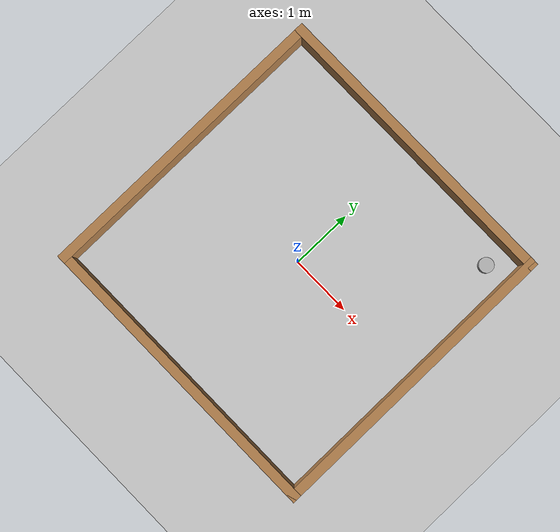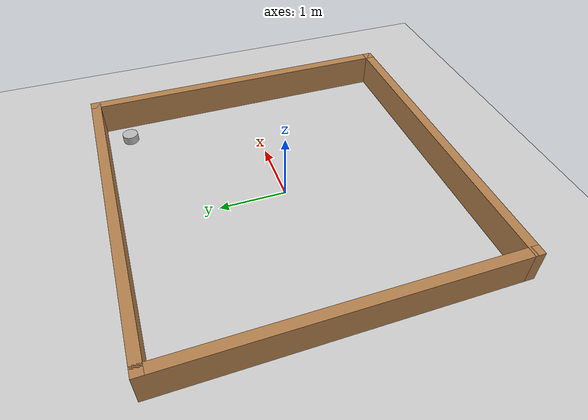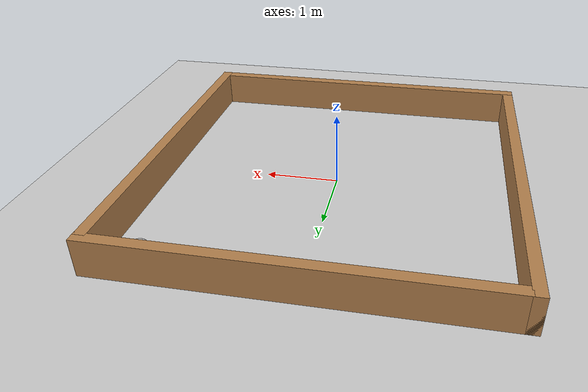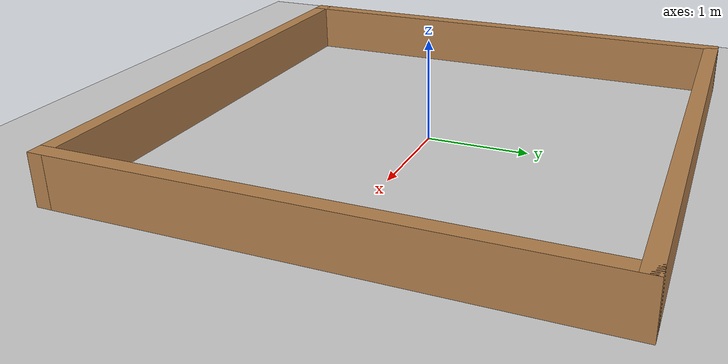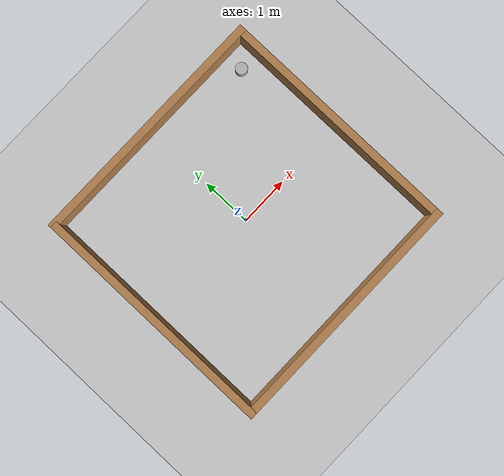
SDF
<sdf version="1.6">
 <world name="default">
  <include><uri>model://ground_plane</uri></include>
  <include><uri>model://sun</uri></include>
  <scene><shadows>false</shadows></scene>
  <physics type="ode">
   <real_time_update_rate>1000.0</real_time_update_rate>
   <max_step_size>0.001</max_step_size>
   <real_time_factor>1</real_time_factor>
   <ode>
    <solver>
     <type>quick</type>
     <iters>150</iters>
     <precon_iters>0</precon_iters>
     <sor>1.400000</sor>
     <use_dynamic_moi_rescaling>1</use_dynamic_moi_rescaling>
    </solver>
    <constraints>
     <cfm>0.00001</cfm>
     <erp>0.2</erp>
     <contact_max_correcting_vel>2000.000000</contact_max_correcting_vel>
     <contact_surface_layer>0.01000</contact_surface_layer>
    </constraints>
   </ode>
  </physics>
  <model name="openbot_dqn_world">
   <static>1</static>
   <include><uri>model://openbot_dqn_world</uri></include>
  </model>
  <model name="openbot_dqn_obstacle1">
   <plugin name="obstacle1" filename="libobstacle1.so"/>
   <include><pose>2 2 0 0 0 0</pose><uri>model://openbot_dqn_world/obstacle1</uri></include>
  </model>
 </world>
</sdf>

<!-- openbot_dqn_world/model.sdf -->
<sdf version='1.6'>
  <model name='openbot_square'>
    <pose frame=''>0 0 0 0 0 0</pose>
    <link name='Wall_1'>
      <collision name='Wall_1_Collision'>
        <geometry>
          <box>
            <size>5 0.15 0.5</size>
          </box>
        </geometry>
        <pose frame=''>0 0 0.25 0 -0 0</pose>
      </collision>
      <visual name='Wall_1_Visual'>
        <pose frame=''>0 0 0.25 0 -0 0</pose>
        <geometry>
          <box>
            <size>5 0.15 0.5</size>
          </box>
        </geometry>
        <material>
          <script>
            <uri>file://media/materials/scripts/gazebo.material</uri>
            <name>Gazebo/Wood</name>
          </script>
          <ambient>1 1 1 1</ambient>
        </material>
      </visual>
      <pose frame=''>-2.425 0 0 0 -0 1.5708</pose>
    </link>
    <link name='Wall_2'>
      <collision name='Wall_2_Collision'>
        <geometry>
          <box>
            <size>5 0.15 0.5</size>
          </box>
        </geometry>
        <pose frame=''>0 0 0.25 0 -0 0</pose>
      </collision>
      <visual name='Wall_2_Visual'>
        <pose frame=''>0 0 0.25 0 -0 0</pose>
        <geometry>
          <box>
            <size>5 0.15 0.5</size>
          </box>
        </geometry>
        <material>
          <script>
            <uri>file://media/materials/scripts/gazebo.material</uri>
            <name>Gazebo/Wood</name>
          </script>
          <ambient>1 1 1 1</ambient>
        </material>
      </visual>
      <pose frame=''>0 2.425 0 0 -0 0</pose>
    </link>
    <link name='Wall_3'>
      <collision name='Wall_3_Collision'>
        <geometry>
          <box>
            <size>5 0.15 0.5</size>
          </box>
        </geometry>
        <pose frame=''>0 0 0.25 0 -0 0</pose>
      </collision>
      <visual name='Wall_3_Visual'>
        <pose frame=''>0 0 0.25 0 -0 0</pose>
        <geometry>
          <box>
            <size>5 0.15 0.5</size>
          </box>
        </geometry>
        <material>
          <script>
            <uri>file://media/materials/scripts/gazebo.material</uri>
            <name>Gazebo/Wood</name>
          </script>
          <ambient>1 1 1 1</ambient>
        </material>
      </visual>
      <pose frame=''>2.425 0 0 0 0 -1.5708</pose>
    </link>
    <link name='Wall_4'>
      <collision name='Wall_4_Collision'>
        <geometry>
          <box>
            <size>5 0.15 0.5</size>
          </box>
        </geometry>
        <pose frame=''>0 0 0.25 0 -0 0</pose>
      </collision>
      <visual name='Wall_4_Visual'>
        <pose frame=''>0 0 0.25 0 -0 0</pose>
        <geometry>
          <box>
            <size>5 0.15 0.5</size>
          </box>
        </geometry>
        <material>
          <script>
            <uri>file://media/materials/scripts/gazebo.material</uri>
            <name>Gazebo/Wood</name>
          </script>
          <ambient>1 1 1 1</ambient>
        </material>
      </visual>
      <pose frame=''>0 -2.425 0 0 -0 3.14159</pose>
    </link>
    <static>1</static>
  </model>
</sdf>

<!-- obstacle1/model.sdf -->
<sdf version='1.6'>
    <model name="obstacle1">
      <link name="link">
        <collision name="collision">
          <geometry>
            <cylinder>
              <radius>0.12</radius>
              <length>0.25</length>
            </cylinder>
          </geometry>
        </collision>

        <visual name="visual">
          <geometry>
            <cylinder>
              <radius>0.12</radius>
              <length>0.25</length>
            </cylinder>
          </geometry>
        </visual>
      </link>
    </model>
</sdf>
